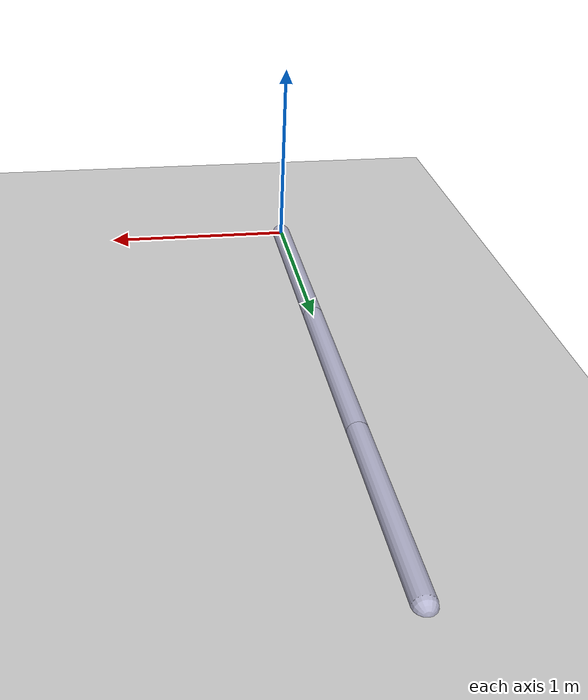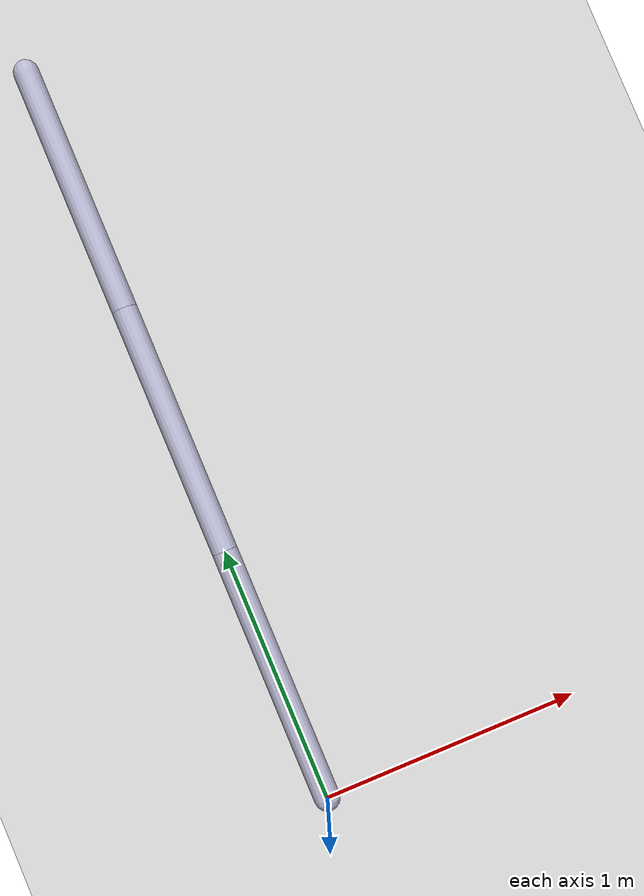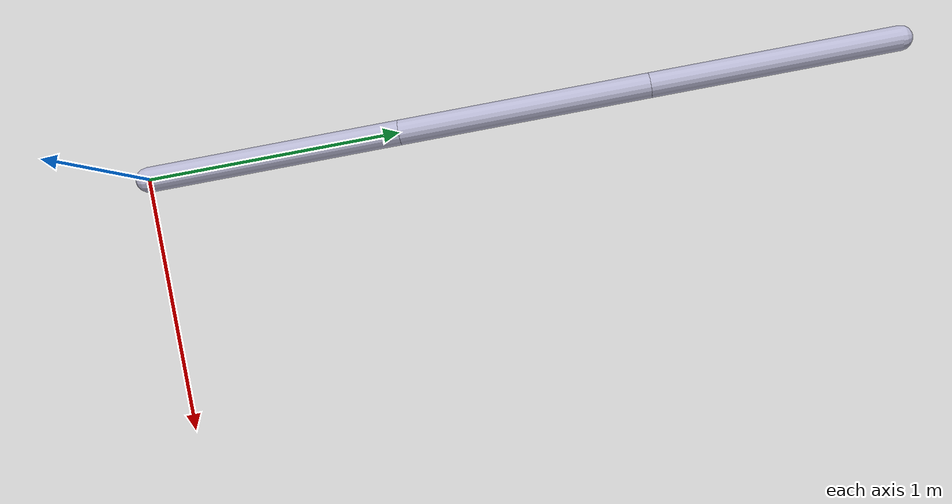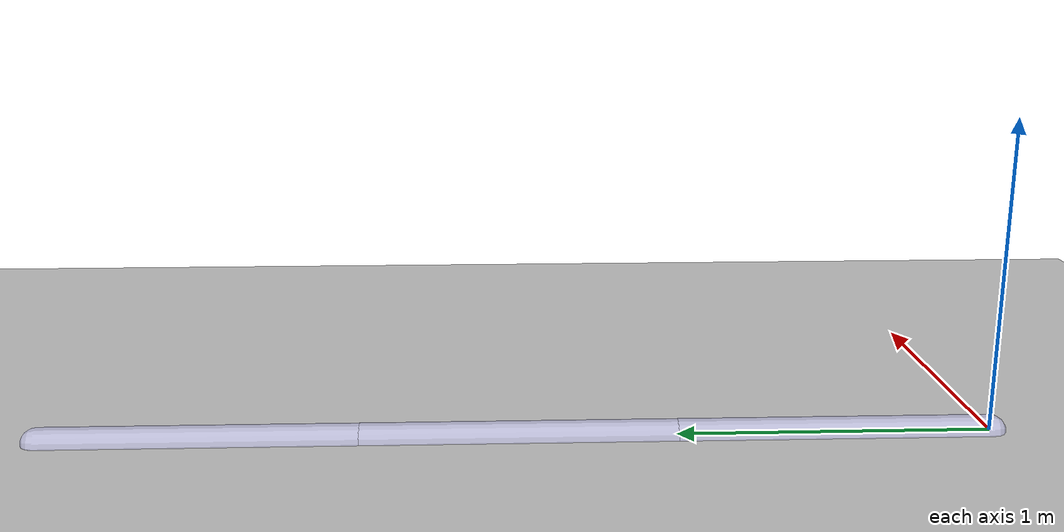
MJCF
<mujoco model="rrr_arm">
  <compiler coordinate="local" angle="radian"/>
  <option gravity="0 0 -9.81" timestep="0.002"/>

  <!-- Defaults: joint spring & damping, and geom appearance -->
  <default>
    <joint type="hinge" axis="1 0 0" damping="0.2" stiffness="5" limited="false"/>
    <geom  type="capsule" size="0.05" rgba="0.7 0.7 0.8 1"/>
  </default>

  <asset>
    <texture name="grid" type="2d" builtin="checker" width="512" height="512"
             rgb1="0.2 0.2 0.2" rgb2="0.3 0.3 0.3"/>
    <material name="mat" texture="grid" texrepeat="4 4" specular="0.2"/>
  </asset>

  <worldbody>
    <!-- Ground (purely visual) -->
    <geom name="floor" type="plane" pos="0 0 0" size="5 5 0.1" material="mat" rgba="0.8 0.8 0.8 1"/>

    <!-- Link 1: joint at (0,0,0); link extends 1 m along +Y -->
    <body name="link1" pos="0 0 0">
      <joint name="j1" pos="0 0 0"/>  <!-- axis = +X from default -->
      <geom  name="g1" fromto="0 0 0  0 1 0"/>  <!-- capsule 1 m -->
      <!-- Child at the end of link1 -->
      <body name="link2" pos="0 1 0">
        <joint name="j2" pos="0 0 0"/>          <!-- axis = +X -->
        <geom  name="g2" fromto="0 0 0  0 1 0"/>
        <!-- Child at the end of link2 -->
        <body name="link3" pos="0 1 0">
          <joint name="j3" pos="0 0 0"/>        <!-- axis = +X -->
          <geom  name="g3" fromto="0 0 0  0 1 0"/>
          <!-- (Optionally add an end-effector site) -->
          <site name="ee" pos="0 1 0" size="0.01" rgba="1 0 0 1"/>
        </body>
      </body>
    </body>
  </worldbody>

  <!-- Actuators: we’ll drive only the base joint (j1) from Python.
       Use a torque motor so Python can implement a PD controller. -->
  <actuator>
    <motor name="m1" joint="j1" gear="1.0"/>
    <!-- Motors for j2 and j3 if you want to control them later -->
    <motor name="m2" joint="j2" gear="1.0"/>
    <motor name="m3" joint="j3" gear="1.0"/>
  </actuator>
</mujoco>
